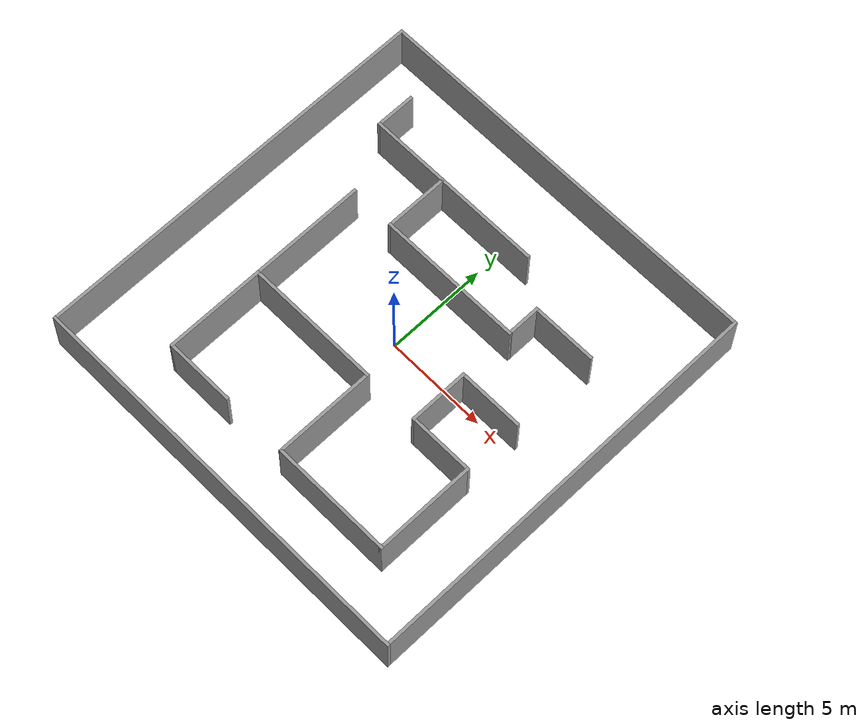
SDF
<?xml version='1.0'?>
<sdf version='1.6'>
  <model name='Test_Buliding_Two'>
    <pose frame=''>0.019489 0.018347 0 0 -0 0</pose>
    <link name='Wall_0'>
      <collision name='Wall_0_Collision'>
        <geometry>
          <box>
            <size>20 0.15 2.5</size>
          </box>
        </geometry>
        <pose frame=''>0 0 1.25 0 -0 0</pose>
      </collision>
      <visual name='Wall_0_Visual'>
        <pose frame=''>0 0 1.25 0 -0 0</pose>
        <geometry>
          <box>
            <size>20 0.15 2.5</size>
          </box>
        </geometry>
        <material>
          <script>
            <uri>file://media/materials/scripts/gazebo.material</uri>
            <name>Gazebo/Grey</name>
          </script>
          <ambient>1 1 1 1</ambient>
        </material>
        <meta>
          <layer>0</layer>
        </meta>
      </visual>
      <pose frame=''>0 -10.05 0 0 -0 0</pose>
    </link>
    <link name='Wall_2'>
      <collision name='Wall_2_Collision'>
        <geometry>
          <box>
            <size>20.25 0.15 2.5</size>
          </box>
        </geometry>
        <pose frame=''>0 0 1.25 0 -0 0</pose>
      </collision>
      <visual name='Wall_2_Visual'>
        <pose frame=''>0 0 1.25 0 -0 0</pose>
        <geometry>
          <box>
            <size>20.25 0.15 2.5</size>
          </box>
        </geometry>
        <material>
          <script>
            <uri>file://media/materials/scripts/gazebo.material</uri>
            <name>Gazebo/Grey</name>
          </script>
          <ambient>1 1 1 1</ambient>
        </material>
        <meta>
          <layer>0</layer>
        </meta>
      </visual>
      <pose frame=''>-9.925 0 0 0 -0 1.5708</pose>
    </link>
    <link name='Wall_3'>
      <collision name='Wall_3_Collision'>
        <geometry>
          <box>
            <size>20 0.15 2.5</size>
          </box>
        </geometry>
        <pose frame=''>0 0 1.25 0 -0 0</pose>
      </collision>
      <visual name='Wall_3_Visual'>
        <pose frame=''>0 0 1.25 0 -0 0</pose>
        <geometry>
          <box>
            <size>20 0.15 2.5</size>
          </box>
        </geometry>
        <material>
          <script>
            <uri>file://media/materials/scripts/gazebo.material</uri>
            <name>Gazebo/Grey</name>
          </script>
          <ambient>1 1 1 1</ambient>
        </material>
        <meta>
          <layer>0</layer>
        </meta>
      </visual>
      <pose frame=''>0 10.05 0 0 -0 0</pose>
    </link>
    <link name='Wall_30'>
      <collision name='Wall_30_Collision'>
        <geometry>
          <box>
            <size>5.75 0.15 2.5</size>
          </box>
        </geometry>
        <pose frame=''>0 0 1.25 0 -0 0</pose>
      </collision>
      <visual name='Wall_30_Visual'>
        <pose frame=''>0 0 1.25 0 -0 0</pose>
        <geometry>
          <box>
            <size>5.75 0.15 2.5</size>
          </box>
        </geometry>
        <material>
          <script>
            <uri>file://media/materials/scripts/gazebo.material</uri>
            <name>Gazebo/Grey</name>
          </script>
          <ambient>1 1 1 1</ambient>
        </material>
        <meta>
          <layer>0</layer>
        </meta>
      </visual>
      <pose frame=''>-5.61474 0.248979 0 0 0 -1.5708</pose>
    </link>
    <link name='Wall_31'>
      <collision name='Wall_31_Collision'>
        <geometry>
          <box>
            <size>6.75 0.15 2.5</size>
          </box>
        </geometry>
        <pose frame=''>0 0 1.25 0 -0 0</pose>
      </collision>
      <visual name='Wall_31_Visual'>
        <pose frame=''>0 0 1.25 0 -0 0</pose>
        <geometry>
          <box>
            <size>6.75 0.15 2.5</size>
          </box>
        </geometry>
        <material>
          <script>
            <uri>file://media/materials/scripts/gazebo.material</uri>
            <name>Gazebo/Grey</name>
          </script>
          <ambient>1 1 1 1</ambient>
        </material>
        <meta>
          <layer>0</layer>
        </meta>
      </visual>
      <pose frame=''>-2.31474 -2.55102 0 0 -0 0</pose>
    </link>
    <link name='Wall_32'>
      <collision name='Wall_32_Collision'>
        <geometry>
          <box>
            <size>5 0.15 2.5</size>
          </box>
        </geometry>
        <pose frame=''>0 0 1.25 0 -0 0</pose>
      </collision>
      <visual name='Wall_32_Visual'>
        <pose frame=''>0 0 1.25 0 -0 0</pose>
        <geometry>
          <box>
            <size>5 0.15 2.5</size>
          </box>
        </geometry>
        <material>
          <script>
            <uri>file://media/materials/scripts/gazebo.material</uri>
            <name>Gazebo/Grey</name>
          </script>
          <ambient>1 1 1 1</ambient>
        </material>
        <meta>
          <layer>0</layer>
        </meta>
      </visual>
      <pose frame=''>0.985264 -4.97602 0 0 0 -1.5708</pose>
    </link>
    <link name='Wall_33'>
      <collision name='Wall_33_Collision'>
        <geometry>
          <box>
            <size>6 0.15 2.5</size>
          </box>
        </geometry>
        <pose frame=''>0 0 1.25 0 -0 0</pose>
      </collision>
      <visual name='Wall_33_Visual'>
        <pose frame=''>0 0 1.25 0 -0 0</pose>
        <geometry>
          <box>
            <size>6 0.15 2.5</size>
          </box>
        </geometry>
        <material>
          <script>
            <uri>file://media/materials/scripts/gazebo.material</uri>
            <name>Gazebo/Grey</name>
          </script>
          <ambient>1 1 1 1</ambient>
        </material>
        <meta>
          <layer>0</layer>
        </meta>
      </visual>
      <pose frame=''>3.91026 -7.40102 0 0 -0 0</pose>
    </link>
    <link name='Wall_34'>
      <collision name='Wall_34_Collision'>
        <geometry>
          <box>
            <size>5 0.15 2.5</size>
          </box>
        </geometry>
        <pose frame=''>0 0 1.25 0 -0 0</pose>
      </collision>
      <visual name='Wall_34_Visual'>
        <pose frame=''>0 0 1.25 0 -0 0</pose>
        <geometry>
          <box>
            <size>5 0.15 2.5</size>
          </box>
        </geometry>
        <material>
          <script>
            <uri>file://media/materials/scripts/gazebo.material</uri>
            <name>Gazebo/Grey</name>
          </script>
          <ambient>1 1 1 1</ambient>
        </material>
        <meta>
          <layer>0</layer>
        </meta>
      </visual>
      <pose frame=''>6.83526 -4.97602 0 0 -0 1.5708</pose>
    </link>
    <link name='Wall_35'>
      <collision name='Wall_35_Collision'>
        <geometry>
          <box>
            <size>3.25 0.15 2.5</size>
          </box>
        </geometry>
        <pose frame=''>0 0 1.25 0 -0 0</pose>
      </collision>
      <visual name='Wall_35_Visual'>
        <pose frame=''>0 0 1.25 0 -0 0</pose>
        <geometry>
          <box>
            <size>3.25 0.15 2.5</size>
          </box>
        </geometry>
        <material>
          <script>
            <uri>file://media/materials/scripts/gazebo.material</uri>
            <name>Gazebo/Grey</name>
          </script>
          <ambient>1 1 1 1</ambient>
        </material>
        <meta>
          <layer>0</layer>
        </meta>
      </visual>
      <pose frame=''>5.28526 -2.55102 0 0 -0 3.14159</pose>
    </link>
    <link name='Wall_36'>
      <collision name='Wall_36_Collision'>
        <geometry>
          <box>
            <size>3 0.15 2.5</size>
          </box>
        </geometry>
        <pose frame=''>0 0 1.25 0 -0 0</pose>
      </collision>
      <visual name='Wall_36_Visual'>
        <pose frame=''>0 0 1.25 0 -0 0</pose>
        <geometry>
          <box>
            <size>3 0.15 2.5</size>
          </box>
        </geometry>
        <material>
          <script>
            <uri>file://media/materials/scripts/gazebo.material</uri>
            <name>Gazebo/Grey</name>
          </script>
          <ambient>1 1 1 1</ambient>
        </material>
        <meta>
          <layer>0</layer>
        </meta>
      </visual>
      <pose frame=''>3.73526 -1.12602 0 0 -0 1.5708</pose>
    </link>
    <link name='Wall_37'>
      <collision name='Wall_37_Collision'>
        <geometry>
          <box>
            <size>3.25 0.15 2.5</size>
          </box>
        </geometry>
        <pose frame=''>0 0 1.25 0 -0 0</pose>
      </collision>
      <visual name='Wall_37_Visual'>
        <pose frame=''>0 0 1.25 0 -0 0</pose>
        <geometry>
          <box>
            <size>3.25 0.15 2.5</size>
          </box>
        </geometry>
        <material>
          <script>
            <uri>file://media/materials/scripts/gazebo.material</uri>
            <name>Gazebo/Grey</name>
          </script>
          <ambient>1 1 1 1</ambient>
        </material>
        <meta>
          <layer>0</layer>
        </meta>
      </visual>
      <pose frame=''>5.28526 0.298979 0 0 -0 0</pose>
    </link>
    <link name='Wall_4'>
      <collision name='Wall_4_Collision'>
        <geometry>
          <box>
            <size>20.25 0.15 2.5</size>
          </box>
        </geometry>
        <pose frame=''>0 0 1.25 0 -0 0</pose>
      </collision>
      <visual name='Wall_4_Visual'>
        <pose frame=''>0 0 1.25 0 -0 0</pose>
        <geometry>
          <box>
            <size>20.25 0.15 2.5</size>
          </box>
        </geometry>
        <material>
          <script>
            <uri>file://media/materials/scripts/gazebo.material</uri>
            <name>Gazebo/Grey</name>
          </script>
          <ambient>1 1 1 1</ambient>
        </material>
        <meta>
          <layer>0</layer>
        </meta>
      </visual>
      <pose frame=''>9.925 0 0 0 0 -1.5708</pose>
    </link>
    <link name='Wall_43'>
      <collision name='Wall_43_Collision'>
        <geometry>
          <box>
            <size>7.25 0.15 2.5</size>
          </box>
        </geometry>
        <pose frame=''>0 0 1.25 0 -0 0</pose>
      </collision>
      <visual name='Wall_43_Visual'>
        <pose frame=''>0 0 1.25 0 -0 0</pose>
        <geometry>
          <box>
            <size>7.25 0.15 2.5</size>
          </box>
        </geometry>
        <material>
          <script>
            <uri>file://media/materials/scripts/gazebo.material</uri>
            <name>Gazebo/Grey</name>
          </script>
          <ambient>1 1 1 1</ambient>
        </material>
        <meta>
          <layer>0</layer>
        </meta>
      </visual>
      <pose frame=''>0.180502 3.00082 0 0 -0 3.14159</pose>
    </link>
    <link name='Wall_44'>
      <collision name='Wall_44_Collision'>
        <geometry>
          <box>
            <size>3.25 0.15 2.5</size>
          </box>
        </geometry>
        <pose frame=''>0 0 1.25 0 -0 0</pose>
      </collision>
      <visual name='Wall_44_Visual'>
        <pose frame=''>0 0 1.25 0 -0 0</pose>
        <geometry>
          <box>
            <size>3.25 0.15 2.5</size>
          </box>
        </geometry>
        <material>
          <script>
            <uri>file://media/materials/scripts/gazebo.material</uri>
            <name>Gazebo/Grey</name>
          </script>
          <ambient>1 1 1 1</ambient>
        </material>
        <meta>
          <layer>0</layer>
        </meta>
      </visual>
      <pose frame=''>-3.3695 4.55082 0 0 -0 1.5708</pose>
    </link>
    <link name='Wall_45'>
      <collision name='Wall_45_Collision'>
        <geometry>
          <box>
            <size>5.25 0.15 2.5</size>
          </box>
        </geometry>
        <pose frame=''>0 0 1.25 0 -0 0</pose>
      </collision>
      <visual name='Wall_45_Visual'>
        <pose frame=''>0 0 1.25 0 -0 0</pose>
        <geometry>
          <box>
            <size>5.25 0.15 2.5</size>
          </box>
        </geometry>
        <material>
          <script>
            <uri>file://media/materials/scripts/gazebo.material</uri>
            <name>Gazebo/Grey</name>
          </script>
          <ambient>1 1 1 1</ambient>
        </material>
        <meta>
          <layer>0</layer>
        </meta>
      </visual>
      <pose frame=''>-0.819498 6.10082 0 0 -0 0</pose>
    </link>
    <link name='Wall_47'>
      <collision name='Wall_47_Collision'>
        <geometry>
          <box>
            <size>1.75 0.15 2.5</size>
          </box>
        </geometry>
        <pose frame=''>0 0 1.25 0 -0 0</pose>
      </collision>
      <visual name='Wall_47_Visual'>
        <pose frame=''>0 0 1.25 0 -0 0</pose>
        <geometry>
          <box>
            <size>1.75 0.15 2.5</size>
          </box>
        </geometry>
        <material>
          <script>
            <uri>file://media/materials/scripts/gazebo.material</uri>
            <name>Gazebo/Grey</name>
          </script>
          <ambient>1 1 1 1</ambient>
        </material>
        <meta>
          <layer>0</layer>
        </meta>
      </visual>
      <pose frame=''>3.7305 3.80082 0 0 -0 1.5708</pose>
    </link>
    <link name='Wall_48'>
      <collision name='Wall_48_Collision'>
        <geometry>
          <box>
            <size>3.25 0.15 2.5</size>
          </box>
        </geometry>
        <pose frame=''>0 0 1.25 0 -0 0</pose>
      </collision>
      <visual name='Wall_48_Visual'>
        <pose frame=''>0 0 1.25 0 -0 0</pose>
        <geometry>
          <box>
            <size>3.25 0.15 2.5</size>
          </box>
        </geometry>
        <material>
          <script>
            <uri>file://media/materials/scripts/gazebo.material</uri>
            <name>Gazebo/Grey</name>
          </script>
          <ambient>1 1 1 1</ambient>
        </material>
        <meta>
          <layer>0</layer>
        </meta>
      </visual>
      <pose frame=''>5.2805 4.60082 0 0 -0 0</pose>
    </link>
    <link name='Wall_50'>
      <collision name='Wall_50_Collision'>
        <geometry>
          <box>
            <size>4 0.15 2.5</size>
          </box>
        </geometry>
        <pose frame=''>0 0 1.25 0 -0 0</pose>
      </collision>
      <visual name='Wall_50_Visual'>
        <pose frame=''>0 0 1.25 0 -0 0</pose>
        <geometry>
          <box>
            <size>4 0.15 2.5</size>
          </box>
        </geometry>
        <material>
          <script>
            <uri>file://media/materials/scripts/gazebo.material</uri>
            <name>Gazebo/Grey</name>
          </script>
          <ambient>1 1 1 1</ambient>
        </material>
        <meta>
          <layer>0</layer>
        </meta>
      </visual>
      <pose frame=''>-5.2945 6.10082 0 0 -0 3.14159</pose>
    </link>
    <link name='Wall_51'>
      <collision name='Wall_51_Collision'>
        <geometry>
          <box>
            <size>2 0.15 2.5</size>
          </box>
        </geometry>
        <pose frame=''>0 0 1.25 0 -0 0</pose>
      </collision>
      <visual name='Wall_51_Visual'>
        <pose frame=''>0 0 1.25 0 -0 0</pose>
        <geometry>
          <box>
            <size>2 0.15 2.5</size>
          </box>
        </geometry>
        <material>
          <script>
            <uri>file://media/materials/scripts/gazebo.material</uri>
            <name>Gazebo/Grey</name>
          </script>
          <ambient>1 1 1 1</ambient>
        </material>
        <meta>
          <layer>0</layer>
        </meta>
      </visual>
      <pose frame=''>-7.2195 7.02582 0 0 -0 1.5708</pose>
    </link>
    <link name='Wall_53'>
      <collision name='Wall_53_Collision'>
        <geometry>
          <box>
            <size>5 0.15 2.5</size>
          </box>
        </geometry>
        <pose frame=''>0 0 1.25 0 -0 0</pose>
      </collision>
      <visual name='Wall_53_Visual'>
        <pose frame=''>0 0 1.25 0 -0 0</pose>
        <geometry>
          <box>
            <size>5 0.15 2.5</size>
          </box>
        </geometry>
        <material>
          <script>
            <uri>file://media/materials/scripts/gazebo.material</uri>
            <name>Gazebo/Grey</name>
          </script>
          <ambient>1 1 1 1</ambient>
        </material>
        <meta>
          <layer>0</layer>
        </meta>
      </visual>
      <pose frame=''>-5.61474 -4.97602 0 0 0 -1.5708</pose>
    </link>
    <link name='Wall_54'>
      <collision name='Wall_54_Collision'>
        <geometry>
          <box>
            <size>3.5 0.15 2.5</size>
          </box>
        </geometry>
        <pose frame=''>0 0 1.25 0 -0 0</pose>
      </collision>
      <visual name='Wall_54_Visual'>
        <pose frame=''>0 0 1.25 0 -0 0</pose>
        <geometry>
          <box>
            <size>3.5 0.15 2.5</size>
          </box>
        </geometry>
        <material>
          <script>
            <uri>file://media/materials/scripts/gazebo.material</uri>
            <name>Gazebo/Grey</name>
          </script>
          <ambient>1 1 1 1</ambient>
        </material>
        <meta>
          <layer>0</layer>
        </meta>
      </visual>
      <pose frame=''>-3.93974 -7.40102 0 0 -0 0</pose>
    </link>
    <static>1</static>
  </model>
</sdf>
